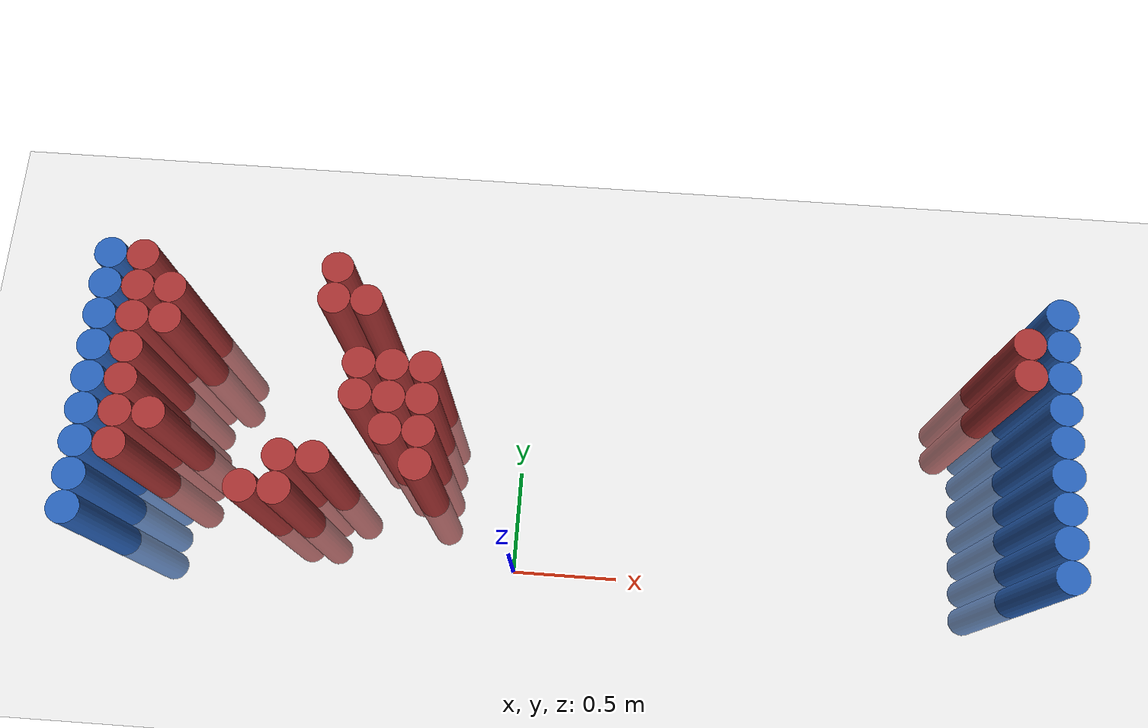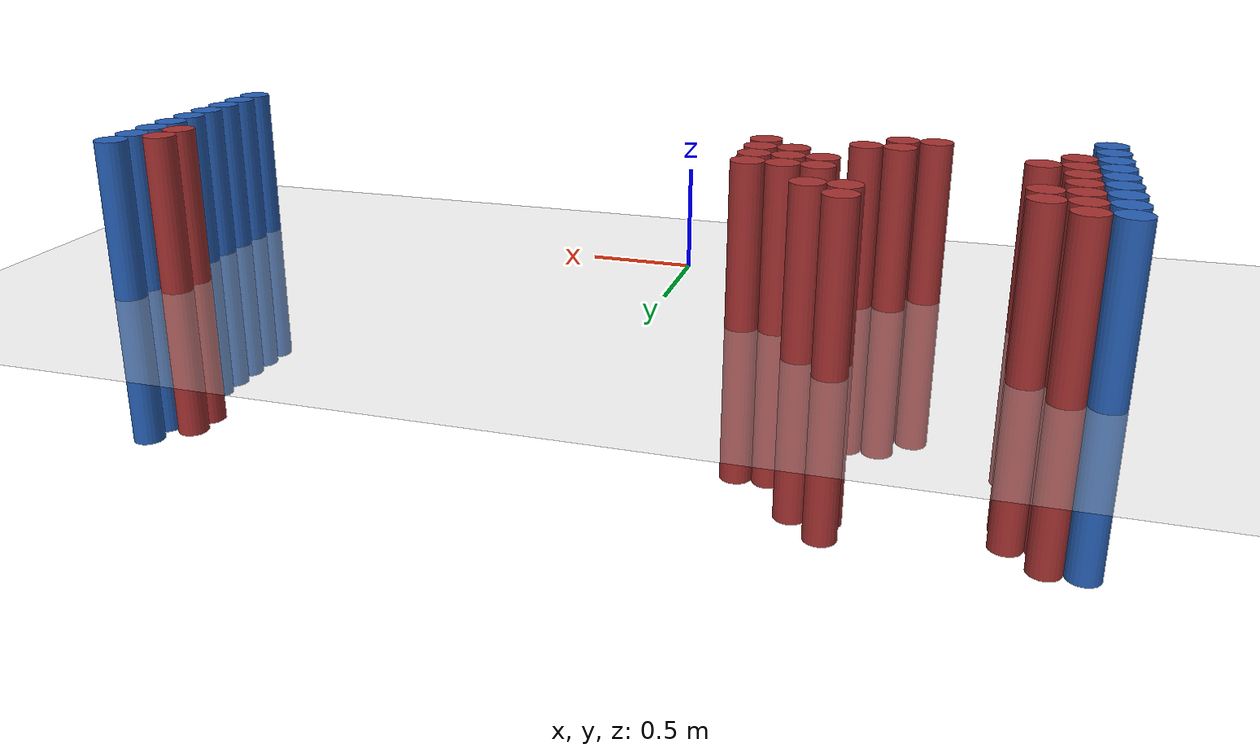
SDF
<sdf version="1.6">
 <world name="default">
  <model name="ground_plane">
   <static>1</static>
   <link name="link">
    <collision name="collision">
     <geometry><plane><normal>0 0 1</normal><size>100 100</size></plane></geometry>
     <surface><friction><ode><mu>100</mu><mu2>50</mu2></ode></friction></surface>
    </collision>
    <visual name="visual">
     <cast_shadows>0</cast_shadows>
     <geometry><plane><normal>0 0 1</normal><size>100 100</size></plane></geometry>
     <material>
      <script><uri>file://media/materials/scripts/gazebo.material</uri><name>Gazebo/Grey</name></script>
     </material>
    </visual>
   </link>
  </model>
  <model name="unit_cylinder_94">
   <static>1</static>
   <pose>2.425000 0.025000 0.000000 0.000000 0.000000 0.000000</pose>
   <link name="link">
    <inertial>
     <mass>1</mass>
     <inertia><ixx>0.145833</ixx><ixy>0</ixy><ixz>0</ixz><iyy>0.145833</iyy><iyz>0</iyz><izz>0.125</izz></inertia>
    </inertial>
    <collision name="collision">
     <geometry><cylinder><radius>0.075000</radius><length>1.5</length></cylinder></geometry>
    </collision>
    <visual name="visual">
     <geometry><cylinder><radius>0.075000</radius><length>1.5</length></cylinder></geometry>
     <material>
      <ambient>0.152000 0.379000 0.720000 1</ambient>
      <diffuse>0.152000 0.379000 0.720000 1</diffuse>
     </material>
     <material>
      <script><name>Gazebo/Grey</name><uri>file://media/materials/scripts/gazebo.material</uri></script>
     </material>
    </visual>
   </link>
  </model>
  <model name="unit_cylinder_95">
   <static>1</static>
   <pose>-1.925000 0.025000 0.000000 0.000000 0.000000 0.000000</pose>
   <link name="link">
    <inertial>
     <mass>1</mass>
     <inertia><ixx>0.145833</ixx><ixy>0</ixy><ixz>0</ixz><iyy>0.145833</iyy><iyz>0</iyz><izz>0.125</izz></inertia>
    </inertial>
    <collision name="collision">
     <geometry><cylinder><radius>0.075000</radius><length>1.5</length></cylinder></geometry>
    </collision>
    <visual name="visual">
     <geometry><cylinder><radius>0.075000</radius><length>1.5</length></cylinder></geometry>
     <material>
      <ambient>0.152000 0.379000 0.720000 1</ambient>
      <diffuse>0.152000 0.379000 0.720000 1</diffuse>
     </material>
     <material>
      <script><name>Gazebo/Grey</name><uri>file://media/materials/scripts/gazebo.material</uri></script>
     </material>
    </visual>
   </link>
  </model>
  <model name="unit_cylinder_96">
   <static>1</static>
   <pose>-1.925000 0.175000 0.000000 0.000000 0.000000 0.000000</pose>
   <link name="link">
    <inertial>
     <mass>1</mass>
     <inertia><ixx>0.145833</ixx><ixy>0</ixy><ixz>0</ixz><iyy>0.145833</iyy><iyz>0</iyz><izz>0.125</izz></inertia>
    </inertial>
    <collision name="collision">
     <geometry><cylinder><radius>0.075000</radius><length>1.5</length></cylinder></geometry>
    </collision>
    <visual name="visual">
     <geometry><cylinder><radius>0.075000</radius><length>1.5</length></cylinder></geometry>
     <material>
      <ambient>0.152000 0.379000 0.720000 1</ambient>
      <diffuse>0.152000 0.379000 0.720000 1</diffuse>
     </material>
     <material>
      <script><name>Gazebo/Grey</name><uri>file://media/materials/scripts/gazebo.material</uri></script>
     </material>
    </visual>
   </link>
  </model>
  <model name="unit_cylinder_97">
   <static>1</static>
   <pose>-1.925000 0.325000 0.000000 0.000000 0.000000 0.000000</pose>
   <link name="link">
    <inertial>
     <mass>1</mass>
     <inertia><ixx>0.145833</ixx><ixy>0</ixy><ixz>0</ixz><iyy>0.145833</iyy><iyz>0</iyz><izz>0.125</izz></inertia>
    </inertial>
    <collision name="collision">
     <geometry><cylinder><radius>0.075000</radius><length>1.5</length></cylinder></geometry>
    </collision>
    <visual name="visual">
     <geometry><cylinder><radius>0.075000</radius><length>1.5</length></cylinder></geometry>
     <material>
      <ambient>0.152000 0.379000 0.720000 1</ambient>
      <diffuse>0.152000 0.379000 0.720000 1</diffuse>
     </material>
     <material>
      <script><name>Gazebo/Grey</name><uri>file://media/materials/scripts/gazebo.material</uri></script>
     </material>
    </visual>
   </link>
  </model>
  <model name="unit_cylinder_98">
   <static>1</static>
   <pose>-1.925000 0.475000 0.000000 0.000000 0.000000 0.000000</pose>
   <link name="link">
    <inertial>
     <mass>1</mass>
     <inertia><ixx>0.145833</ixx><ixy>0</ixy><ixz>0</ixz><iyy>0.145833</iyy><iyz>0</iyz><izz>0.125</izz></inertia>
    </inertial>
    <collision name="collision">
     <geometry><cylinder><radius>0.075000</radius><length>1.5</length></cylinder></geometry>
    </collision>
    <visual name="visual">
     <geometry><cylinder><radius>0.075000</radius><length>1.5</length></cylinder></geometry>
     <material>
      <ambient>0.152000 0.379000 0.720000 1</ambient>
      <diffuse>0.152000 0.379000 0.720000 1</diffuse>
     </material>
     <material>
      <script><name>Gazebo/Grey</name><uri>file://media/materials/scripts/gazebo.material</uri></script>
     </material>
    </visual>
   </link>
  </model>
  <model name="unit_cylinder_99">
   <static>1</static>
   <pose>-1.925000 0.625000 0.000000 0.000000 0.000000 0.000000</pose>
   <link name="link">
    <inertial>
     <mass>1</mass>
     <inertia><ixx>0.145833</ixx><ixy>0</ixy><ixz>0</ixz><iyy>0.145833</iyy><iyz>0</iyz><izz>0.125</izz></inertia>
    </inertial>
    <collision name="collision">
     <geometry><cylinder><radius>0.075000</radius><length>1.5</length></cylinder></geometry>
    </collision>
    <visual name="visual">
     <geometry><cylinder><radius>0.075000</radius><length>1.5</length></cylinder></geometry>
     <material>
      <ambient>0.152000 0.379000 0.720000 1</ambient>
      <diffuse>0.152000 0.379000 0.720000 1</diffuse>
     </material>
     <material>
      <script><name>Gazebo/Grey</name><uri>file://media/materials/scripts/gazebo.material</uri></script>
     </material>
    </visual>
   </link>
  </model>
  <model name="unit_cylinder_100">
   <static>1</static>
   <pose>-1.925000 0.775000 0.000000 0.000000 0.000000 0.000000</pose>
   <link name="link">
    <inertial>
     <mass>1</mass>
     <inertia><ixx>0.145833</ixx><ixy>0</ixy><ixz>0</ixz><iyy>0.145833</iyy><iyz>0</iyz><izz>0.125</izz></inertia>
    </inertial>
    <collision name="collision">
     <geometry><cylinder><radius>0.075000</radius><length>1.5</length></cylinder></geometry>
    </collision>
    <visual name="visual">
     <geometry><cylinder><radius>0.075000</radius><length>1.5</length></cylinder></geometry>
     <material>
      <ambient>0.152000 0.379000 0.720000 1</ambient>
      <diffuse>0.152000 0.379000 0.720000 1</diffuse>
     </material>
     <material>
      <script><name>Gazebo/Grey</name><uri>file://media/materials/scripts/gazebo.material</uri></script>
     </material>
    </visual>
   </link>
  </model>
  <model name="unit_cylinder_101">
   <static>1</static>
   <pose>-1.925000 0.925000 0.000000 0.000000 0.000000 0.000000</pose>
   <link name="link">
    <inertial>
     <mass>1</mass>
     <inertia><ixx>0.145833</ixx><ixy>0</ixy><ixz>0</ixz><iyy>0.145833</iyy><iyz>0</iyz><izz>0.125</izz></inertia>
    </inertial>
    <collision name="collision">
     <geometry><cylinder><radius>0.075000</radius><length>1.5</length></cylinder></geometry>
    </collision>
    <visual name="visual">
     <geometry><cylinder><radius>0.075000</radius><length>1.5</length></cylinder></geometry>
     <material>
      <ambient>0.152000 0.379000 0.720000 1</ambient>
      <diffuse>0.152000 0.379000 0.720000 1</diffuse>
     </material>
     <material>
      <script><name>Gazebo/Grey</name><uri>file://media/materials/scripts/gazebo.material</uri></script>
     </material>
    </visual>
   </link>
  </model>
  <model name="unit_cylinder_102">
   <static>1</static>
   <pose>-1.925000 1.075000 0.000000 0.000000 0.000000 0.000000</pose>
   <link name="link">
    <inertial>
     <mass>1</mass>
     <inertia><ixx>0.145833</ixx><ixy>0</ixy><ixz>0</ixz><iyy>0.145833</iyy><iyz>0</iyz><izz>0.125</izz></inertia>
    </inertial>
    <collision name="collision">
     <geometry><cylinder><radius>0.075000</radius><length>1.5</length></cylinder></geometry>
    </collision>
    <visual name="visual">
     <geometry><cylinder><radius>0.075000</radius><length>1.5</length></cylinder></geometry>
     <material>
      <ambient>0.152000 0.379000 0.720000 1</ambient>
      <diffuse>0.152000 0.379000 0.720000 1</diffuse>
     </material>
     <material>
      <script><name>Gazebo/Grey</name><uri>file://media/materials/scripts/gazebo.material</uri></script>
     </material>
    </visual>
   </link>
  </model>
  <model name="unit_cylinder_103">
   <static>1</static>
   <pose>-1.925000 1.225000 0.000000 0.000000 0.000000 0.000000</pose>
   <link name="link">
    <inertial>
     <mass>1</mass>
     <inertia><ixx>0.145833</ixx><ixy>0</ixy><ixz>0</ixz><iyy>0.145833</iyy><iyz>0</iyz><izz>0.125</izz></inertia>
    </inertial>
    <collision name="collision">
     <geometry><cylinder><radius>0.075000</radius><length>1.5</length></cylinder></geometry>
    </collision>
    <visual name="visual">
     <geometry><cylinder><radius>0.075000</radius><length>1.5</length></cylinder></geometry>
     <material>
      <ambient>0.152000 0.379000 0.720000 1</ambient>
      <diffuse>0.152000 0.379000 0.720000 1</diffuse>
     </material>
     <material>
      <script><name>Gazebo/Grey</name><uri>file://media/materials/scripts/gazebo.material</uri></script>
     </material>
    </visual>
   </link>
  </model>
  <model name="unit_cylinder_126">
   <static>1</static>
   <pose>-1.775000 0.325000 0.000000 0.000000 0.000000 0.000000</pose>
   <link name="link">
    <inertial>
     <mass>1</mass>
     <inertia><ixx>0.145833</ixx><ixy>0</ixy><ixz>0</ixz><iyy>0.145833</iyy><iyz>0</iyz><izz>0.125</izz></inertia>
    </inertial>
    <collision name="collision">
     <geometry><cylinder><radius>0.075000</radius><length>1.5</length></cylinder></geometry>
    </collision>
    <visual name="visual">
     <geometry><cylinder><radius>0.075000</radius><length>1.5</length></cylinder></geometry>
     <material>
      <ambient>0.648000 0.192000 0.192000 1</ambient>
      <diffuse>0.648000 0.192000 0.192000 1</diffuse>
     </material>
     <material>
      <script><name>Gazebo/Grey</name><uri>file://media/materials/scripts/gazebo.material</uri></script>
     </material>
    </visual>
   </link>
  </model>
  <model name="unit_cylinder_127">
   <static>1</static>
   <pose>-1.775000 0.475000 0.000000 0.000000 0.000000 0.000000</pose>
   <link name="link">
    <inertial>
     <mass>1</mass>
     <inertia><ixx>0.145833</ixx><ixy>0</ixy><ixz>0</ixz><iyy>0.145833</iyy><iyz>0</iyz><izz>0.125</izz></inertia>
    </inertial>
    <collision name="collision">
     <geometry><cylinder><radius>0.075000</radius><length>1.5</length></cylinder></geometry>
    </collision>
    <visual name="visual">
     <geometry><cylinder><radius>0.075000</radius><length>1.5</length></cylinder></geometry>
     <material>
      <ambient>0.648000 0.192000 0.192000 1</ambient>
      <diffuse>0.648000 0.192000 0.192000 1</diffuse>
     </material>
     <material>
      <script><name>Gazebo/Grey</name><uri>file://media/materials/scripts/gazebo.material</uri></script>
     </material>
    </visual>
   </link>
  </model>
  <model name="unit_cylinder_128">
   <static>1</static>
   <pose>-1.775000 0.625000 0.000000 0.000000 0.000000 0.000000</pose>
   <link name="link">
    <inertial>
     <mass>1</mass>
     <inertia><ixx>0.145833</ixx><ixy>0</ixy><ixz>0</ixz><iyy>0.145833</iyy><iyz>0</iyz><izz>0.125</izz></inertia>
    </inertial>
    <collision name="collision">
     <geometry><cylinder><radius>0.075000</radius><length>1.5</length></cylinder></geometry>
    </collision>
    <visual name="visual">
     <geometry><cylinder><radius>0.075000</radius><length>1.5</length></cylinder></geometry>
     <material>
      <ambient>0.648000 0.192000 0.192000 1</ambient>
      <diffuse>0.648000 0.192000 0.192000 1</diffuse>
     </material>
     <material>
      <script><name>Gazebo/Grey</name><uri>file://media/materials/scripts/gazebo.material</uri></script>
     </material>
    </visual>
   </link>
  </model>
  <model name="unit_cylinder_129">
   <static>1</static>
   <pose>-1.775000 0.775000 0.000000 0.000000 0.000000 0.000000</pose>
   <link name="link">
    <inertial>
     <mass>1</mass>
     <inertia><ixx>0.145833</ixx><ixy>0</ixy><ixz>0</ixz><iyy>0.145833</iyy><iyz>0</iyz><izz>0.125</izz></inertia>
    </inertial>
    <collision name="collision">
     <geometry><cylinder><radius>0.075000</radius><length>1.5</length></cylinder></geometry>
    </collision>
    <visual name="visual">
     <geometry><cylinder><radius>0.075000</radius><length>1.5</length></cylinder></geometry>
     <material>
      <ambient>0.648000 0.192000 0.192000 1</ambient>
      <diffuse>0.648000 0.192000 0.192000 1</diffuse>
     </material>
     <material>
      <script><name>Gazebo/Grey</name><uri>file://media/materials/scripts/gazebo.material</uri></script>
     </material>
    </visual>
   </link>
  </model>
  <model name="unit_cylinder_130">
   <static>1</static>
   <pose>-1.775000 0.925000 0.000000 0.000000 0.000000 0.000000</pose>
   <link name="link">
    <inertial>
     <mass>1</mass>
     <inertia><ixx>0.145833</ixx><ixy>0</ixy><ixz>0</ixz><iyy>0.145833</iyy><iyz>0</iyz><izz>0.125</izz></inertia>
    </inertial>
    <collision name="collision">
     <geometry><cylinder><radius>0.075000</radius><length>1.5</length></cylinder></geometry>
    </collision>
    <visual name="visual">
     <geometry><cylinder><radius>0.075000</radius><length>1.5</length></cylinder></geometry>
     <material>
      <ambient>0.648000 0.192000 0.192000 1</ambient>
      <diffuse>0.648000 0.192000 0.192000 1</diffuse>
     </material>
     <material>
      <script><name>Gazebo/Grey</name><uri>file://media/materials/scripts/gazebo.material</uri></script>
     </material>
    </visual>
   </link>
  </model>
  <model name="unit_cylinder_131">
   <static>1</static>
   <pose>-1.775000 1.075000 0.000000 0.000000 0.000000 0.000000</pose>
   <link name="link">
    <inertial>
     <mass>1</mass>
     <inertia><ixx>0.145833</ixx><ixy>0</ixy><ixz>0</ixz><iyy>0.145833</iyy><iyz>0</iyz><izz>0.125</izz></inertia>
    </inertial>
    <collision name="collision">
     <geometry><cylinder><radius>0.075000</radius><length>1.5</length></cylinder></geometry>
    </collision>
    <visual name="visual">
     <geometry><cylinder><radius>0.075000</radius><length>1.5</length></cylinder></geometry>
     <material>
      <ambient>0.648000 0.192000 0.192000 1</ambient>
      <diffuse>0.648000 0.192000 0.192000 1</diffuse>
     </material>
     <material>
      <script><name>Gazebo/Grey</name><uri>file://media/materials/scripts/gazebo.material</uri></script>
     </material>
    </visual>
   </link>
  </model>
  <model name="unit_cylinder_132">
   <static>1</static>
   <pose>-1.775000 1.225000 0.000000 0.000000 0.000000 0.000000</pose>
   <link name="link">
    <inertial>
     <mass>1</mass>
     <inertia><ixx>0.145833</ixx><ixy>0</ixy><ixz>0</ixz><iyy>0.145833</iyy><iyz>0</iyz><izz>0.125</izz></inertia>
    </inertial>
    <collision name="collision">
     <geometry><cylinder><radius>0.075000</radius><length>1.5</length></cylinder></geometry>
    </collision>
    <visual name="visual">
     <geometry><cylinder><radius>0.075000</radius><length>1.5</length></cylinder></geometry>
     <material>
      <ambient>0.648000 0.192000 0.192000 1</ambient>
      <diffuse>0.648000 0.192000 0.192000 1</diffuse>
     </material>
     <material>
      <script><name>Gazebo/Grey</name><uri>file://media/materials/scripts/gazebo.material</uri></script>
     </material>
    </visual>
   </link>
  </model>
  <model name="unit_cylinder_147">
   <static>1</static>
   <pose>-1.625000 0.475000 0.000000 0.000000 0.000000 0.000000</pose>
   <link name="link">
    <inertial>
     <mass>1</mass>
     <inertia><ixx>0.145833</ixx><ixy>0</ixy><ixz>0</ixz><iyy>0.145833</iyy><iyz>0</iyz><izz>0.125</izz></inertia>
    </inertial>
    <collision name="collision">
     <geometry><cylinder><radius>0.075000</radius><length>1.5</length></cylinder></geometry>
    </collision>
    <visual name="visual">
     <geometry><cylinder><radius>0.075000</radius><length>1.5</length></cylinder></geometry>
     <material>
      <ambient>0.648000 0.192000 0.192000 1</ambient>
      <diffuse>0.648000 0.192000 0.192000 1</diffuse>
     </material>
     <material>
      <script><name>Gazebo/Grey</name><uri>file://media/materials/scripts/gazebo.material</uri></script>
     </material>
    </visual>
   </link>
  </model>
  <model name="unit_cylinder_148">
   <static>1</static>
   <pose>-1.625000 0.925000 0.000000 0.000000 0.000000 0.000000</pose>
   <link name="link">
    <inertial>
     <mass>1</mass>
     <inertia><ixx>0.145833</ixx><ixy>0</ixy><ixz>0</ixz><iyy>0.145833</iyy><iyz>0</iyz><izz>0.125</izz></inertia>
    </inertial>
    <collision name="collision">
     <geometry><cylinder><radius>0.075000</radius><length>1.5</length></cylinder></geometry>
    </collision>
    <visual name="visual">
     <geometry><cylinder><radius>0.075000</radius><length>1.5</length></cylinder></geometry>
     <material>
      <ambient>0.648000 0.192000 0.192000 1</ambient>
      <diffuse>0.648000 0.192000 0.192000 1</diffuse>
     </material>
     <material>
      <script><name>Gazebo/Grey</name><uri>file://media/materials/scripts/gazebo.material</uri></script>
     </material>
    </visual>
   </link>
  </model>
  <model name="unit_cylinder_149">
   <static>1</static>
   <pose>-1.625000 1.075000 0.000000 0.000000 0.000000 0.000000</pose>
   <link name="link">
    <inertial>
     <mass>1</mass>
     <inertia><ixx>0.145833</ixx><ixy>0</ixy><ixz>0</ixz><iyy>0.145833</iyy><iyz>0</iyz><izz>0.125</izz></inertia>
    </inertial>
    <collision name="collision">
     <geometry><cylinder><radius>0.075000</radius><length>1.5</length></cylinder></geometry>
    </collision>
    <visual name="visual">
     <geometry><cylinder><radius>0.075000</radius><length>1.5</length></cylinder></geometry>
     <material>
      <ambient>0.648000 0.192000 0.192000 1</ambient>
      <diffuse>0.648000 0.192000 0.192000 1</diffuse>
     </material>
     <material>
      <script><name>Gazebo/Grey</name><uri>file://media/materials/scripts/gazebo.material</uri></script>
     </material>
    </visual>
   </link>
  </model>
  <model name="unit_cylinder_164">
   <static>1</static>
   <pose>-1.175000 0.175000 0.000000 0.000000 0.000000 0.000000</pose>
   <link name="link">
    <inertial>
     <mass>1</mass>
     <inertia><ixx>0.145833</ixx><ixy>0</ixy><ixz>0</ixz><iyy>0.145833</iyy><iyz>0</iyz><izz>0.125</izz></inertia>
    </inertial>
    <collision name="collision">
     <geometry><cylinder><radius>0.075000</radius><length>1.5</length></cylinder></geometry>
    </collision>
    <visual name="visual">
     <geometry><cylinder><radius>0.075000</radius><length>1.5</length></cylinder></geometry>
     <material>
      <ambient>0.648000 0.192000 0.192000 1</ambient>
      <diffuse>0.648000 0.192000 0.192000 1</diffuse>
     </material>
     <material>
      <script><name>Gazebo/Grey</name><uri>file://media/materials/scripts/gazebo.material</uri></script>
     </material>
    </visual>
   </link>
  </model>
  <model name="unit_cylinder_167">
   <static>1</static>
   <pose>-1.025000 0.175000 0.000000 0.000000 0.000000 0.000000</pose>
   <link name="link">
    <inertial>
     <mass>1</mass>
     <inertia><ixx>0.145833</ixx><ixy>0</ixy><ixz>0</ixz><iyy>0.145833</iyy><iyz>0</iyz><izz>0.125</izz></inertia>
    </inertial>
    <collision name="collision">
     <geometry><cylinder><radius>0.075000</radius><length>1.5</length></cylinder></geometry>
    </collision>
    <visual name="visual">
     <geometry><cylinder><radius>0.075000</radius><length>1.5</length></cylinder></geometry>
     <material>
      <ambient>0.648000 0.192000 0.192000 1</ambient>
      <diffuse>0.648000 0.192000 0.192000 1</diffuse>
     </material>
     <material>
      <script><name>Gazebo/Grey</name><uri>file://media/materials/scripts/gazebo.material</uri></script>
     </material>
    </visual>
   </link>
  </model>
  <model name="unit_cylinder_168">
   <static>1</static>
   <pose>-1.025000 0.325000 0.000000 0.000000 0.000000 0.000000</pose>
   <link name="link">
    <inertial>
     <mass>1</mass>
     <inertia><ixx>0.145833</ixx><ixy>0</ixy><ixz>0</ixz><iyy>0.145833</iyy><iyz>0</iyz><izz>0.125</izz></inertia>
    </inertial>
    <collision name="collision">
     <geometry><cylinder><radius>0.075000</radius><length>1.5</length></cylinder></geometry>
    </collision>
    <visual name="visual">
     <geometry><cylinder><radius>0.075000</radius><length>1.5</length></cylinder></geometry>
     <material>
      <ambient>0.648000 0.192000 0.192000 1</ambient>
      <diffuse>0.648000 0.192000 0.192000 1</diffuse>
     </material>
     <material>
      <script><name>Gazebo/Grey</name><uri>file://media/materials/scripts/gazebo.material</uri></script>
     </material>
    </visual>
   </link>
  </model>
  <model name="unit_cylinder_173">
   <static>1</static>
   <pose>-0.875000 0.325000 0.000000 0.000000 0.000000 0.000000</pose>
   <link name="link">
    <inertial>
     <mass>1</mass>
     <inertia><ixx>0.145833</ixx><ixy>0</ixy><ixz>0</ixz><iyy>0.145833</iyy><iyz>0</iyz><izz>0.125</izz></inertia>
    </inertial>
    <collision name="collision">
     <geometry><cylinder><radius>0.075000</radius><length>1.5</length></cylinder></geometry>
    </collision>
    <visual name="visual">
     <geometry><cylinder><radius>0.075000</radius><length>1.5</length></cylinder></geometry>
     <material>
      <ambient>0.648000 0.192000 0.192000 1</ambient>
      <diffuse>0.648000 0.192000 0.192000 1</diffuse>
     </material>
     <material>
      <script><name>Gazebo/Grey</name><uri>file://media/materials/scripts/gazebo.material</uri></script>
     </material>
    </visual>
   </link>
  </model>
  <model name="unit_cylinder_174">
   <static>1</static>
   <pose>-0.875000 1.075000 0.000000 0.000000 0.000000 0.000000</pose>
   <link name="link">
    <inertial>
     <mass>1</mass>
     <inertia><ixx>0.145833</ixx><ixy>0</ixy><ixz>0</ixz><iyy>0.145833</iyy><iyz>0</iyz><izz>0.125</izz></inertia>
    </inertial>
    <collision name="collision">
     <geometry><cylinder><radius>0.075000</radius><length>1.5</length></cylinder></geometry>
    </collision>
    <visual name="visual">
     <geometry><cylinder><radius>0.075000</radius><length>1.5</length></cylinder></geometry>
     <material>
      <ambient>0.648000 0.192000 0.192000 1</ambient>
      <diffuse>0.648000 0.192000 0.192000 1</diffuse>
     </material>
     <material>
      <script><name>Gazebo/Grey</name><uri>file://media/materials/scripts/gazebo.material</uri></script>
     </material>
    </visual>
   </link>
  </model>
  <model name="unit_cylinder_175">
   <static>1</static>
   <pose>-0.875000 1.225000 0.000000 0.000000 0.000000 0.000000</pose>
   <link name="link">
    <inertial>
     <mass>1</mass>
     <inertia><ixx>0.145833</ixx><ixy>0</ixy><ixz>0</ixz><iyy>0.145833</iyy><iyz>0</iyz><izz>0.125</izz></inertia>
    </inertial>
    <collision name="collision">
     <geometry><cylinder><radius>0.075000</radius><length>1.5</length></cylinder></geometry>
    </collision>
    <visual name="visual">
     <geometry><cylinder><radius>0.075000</radius><length>1.5</length></cylinder></geometry>
     <material>
      <ambient>0.648000 0.192000 0.192000 1</ambient>
      <diffuse>0.648000 0.192000 0.192000 1</diffuse>
     </material>
     <material>
      <script><name>Gazebo/Grey</name><uri>file://media/materials/scripts/gazebo.material</uri></script>
     </material>
    </visual>
   </link>
  </model>
  <model name="unit_cylinder_180">
   <static>1</static>
   <pose>-0.725000 0.625000 0.000000 0.000000 0.000000 0.000000</pose>
   <link name="link">
    <inertial>
     <mass>1</mass>
     <inertia><ixx>0.145833</ixx><ixy>0</ixy><ixz>0</ixz><iyy>0.145833</iyy><iyz>0</iyz><izz>0.125</izz></inertia>
    </inertial>
    <collision name="collision">
     <geometry><cylinder><radius>0.075000</radius><length>1.5</length></cylinder></geometry>
    </collision>
    <visual name="visual">
     <geometry><cylinder><radius>0.075000</radius><length>1.5</length></cylinder></geometry>
     <material>
      <ambient>0.648000 0.192000 0.192000 1</ambient>
      <diffuse>0.648000 0.192000 0.192000 1</diffuse>
     </material>
     <material>
      <script><name>Gazebo/Grey</name><uri>file://media/materials/scripts/gazebo.material</uri></script>
     </material>
    </visual>
   </link>
  </model>
  <model name="unit_cylinder_181">
   <static>1</static>
   <pose>-0.725000 0.775000 0.000000 0.000000 0.000000 0.000000</pose>
   <link name="link">
    <inertial>
     <mass>1</mass>
     <inertia><ixx>0.145833</ixx><ixy>0</ixy><ixz>0</ixz><iyy>0.145833</iyy><iyz>0</iyz><izz>0.125</izz></inertia>
    </inertial>
    <collision name="collision">
     <geometry><cylinder><radius>0.075000</radius><length>1.5</length></cylinder></geometry>
    </collision>
    <visual name="visual">
     <geometry><cylinder><radius>0.075000</radius><length>1.5</length></cylinder></geometry>
     <material>
      <ambient>0.648000 0.192000 0.192000 1</ambient>
      <diffuse>0.648000 0.192000 0.192000 1</diffuse>
     </material>
     <material>
      <script><name>Gazebo/Grey</name><uri>file://media/materials/scripts/gazebo.material</uri></script>
     </material>
    </visual>
   </link>
  </model>
  <model name="unit_cylinder_182">
   <static>1</static>
   <pose>-0.725000 1.075000 0.000000 0.000000 0.000000 0.000000</pose>
   <link name="link">
    <inertial>
     <mass>1</mass>
     <inertia><ixx>0.145833</ixx><ixy>0</ixy><ixz>0</ixz><iyy>0.145833</iyy><iyz>0</iyz><izz>0.125</izz></inertia>
    </inertial>
    <collision name="collision">
     <geometry><cylinder><radius>0.075000</radius><length>1.5</length></cylinder></geometry>
    </collision>
    <visual name="visual">
     <geometry><cylinder><radius>0.075000</radius><length>1.5</length></cylinder></geometry>
     <material>
      <ambient>0.648000 0.192000 0.192000 1</ambient>
      <diffuse>0.648000 0.192000 0.192000 1</diffuse>
     </material>
     <material>
      <script><name>Gazebo/Grey</name><uri>file://media/materials/scripts/gazebo.material</uri></script>
     </material>
    </visual>
   </link>
  </model>
  <model name="unit_cylinder_187">
   <static>1</static>
   <pose>-0.575000 0.475000 0.000000 0.000000 0.000000 0.000000</pose>
   <link name="link">
    <inertial>
     <mass>1</mass>
     <inertia><ixx>0.145833</ixx><ixy>0</ixy><ixz>0</ixz><iyy>0.145833</iyy><iyz>0</iyz><izz>0.125</izz></inertia>
    </inertial>
    <collision name="collision">
     <geometry><cylinder><radius>0.075000</radius><length>1.5</length></cylinder></geometry>
    </collision>
    <visual name="visual">
     <geometry><cylinder><radius>0.075000</radius><length>1.5</length></cylinder></geometry>
     <material>
      <ambient>0.648000 0.192000 0.192000 1</ambient>
      <diffuse>0.648000 0.192000 0.192000 1</diffuse>
     </material>
     <material>
      <script><name>Gazebo/Grey</name><uri>file://media/materials/scripts/gazebo.material</uri></script>
     </material>
    </visual>
   </link>
  </model>
  <model name="unit_cylinder_188">
   <static>1</static>
   <pose>-0.575000 0.625000 0.000000 0.000000 0.000000 0.000000</pose>
   <link name="link">
    <inertial>
     <mass>1</mass>
     <inertia><ixx>0.145833</ixx><ixy>0</ixy><ixz>0</ixz><iyy>0.145833</iyy><iyz>0</iyz><izz>0.125</izz></inertia>
    </inertial>
    <collision name="collision">
     <geometry><cylinder><radius>0.075000</radius><length>1.5</length></cylinder></geometry>
    </collision>
    <visual name="visual">
     <geometry><cylinder><radius>0.075000</radius><length>1.5</length></cylinder></geometry>
     <material>
      <ambient>0.648000 0.192000 0.192000 1</ambient>
      <diffuse>0.648000 0.192000 0.192000 1</diffuse>
     </material>
     <material>
      <script><name>Gazebo/Grey</name><uri>file://media/materials/scripts/gazebo.material</uri></script>
     </material>
    </visual>
   </link>
  </model>
  <model name="unit_cylinder_189">
   <static>1</static>
   <pose>-0.575000 0.775000 0.000000 0.000000 0.000000 0.000000</pose>
   <link name="link">
    <inertial>
     <mass>1</mass>
     <inertia><ixx>0.145833</ixx><ixy>0</ixy><ixz>0</ixz><iyy>0.145833</iyy><iyz>0</iyz><izz>0.125</izz></inertia>
    </inertial>
    <collision name="collision">
     <geometry><cylinder><radius>0.075000</radius><length>1.5</length></cylinder></geometry>
    </collision>
    <visual name="visual">
     <geometry><cylinder><radius>0.075000</radius><length>1.5</length></cylinder></geometry>
     <material>
      <ambient>0.648000 0.192000 0.192000 1</ambient>
      <diffuse>0.648000 0.192000 0.192000 1</diffuse>
     </material>
     <material>
      <script><name>Gazebo/Grey</name><uri>file://media/materials/scripts/gazebo.material</uri></script>
     </material>
    </visual>
   </link>
  </model>
  <model name="unit_cylinder_195">
   <static>1</static>
   <pose>-0.425000 0.325000 0.000000 0.000000 0.000000 0.000000</pose>
   <link name="link">
    <inertial>
     <mass>1</mass>
     <inertia><ixx>0.145833</ixx><ixy>0</ixy><ixz>0</ixz><iyy>0.145833</iyy><iyz>0</iyz><izz>0.125</izz></inertia>
    </inertial>
    <collision name="collision">
     <geometry><cylinder><radius>0.075000</radius><length>1.5</length></cylinder></geometry>
    </collision>
    <visual name="visual">
     <geometry><cylinder><radius>0.075000</radius><length>1.5</length></cylinder></geometry>
     <material>
      <ambient>0.648000 0.192000 0.192000 1</ambient>
      <diffuse>0.648000 0.192000 0.192000 1</diffuse>
     </material>
     <material>
      <script><name>Gazebo/Grey</name><uri>file://media/materials/scripts/gazebo.material</uri></script>
     </material>
    </visual>
   </link>
  </model>
  <model name="unit_cylinder_196">
   <static>1</static>
   <pose>-0.425000 0.475000 0.000000 0.000000 0.000000 0.000000</pose>
   <link name="link">
    <inertial>
     <mass>1</mass>
     <inertia><ixx>0.145833</ixx><ixy>0</ixy><ixz>0</ixz><iyy>0.145833</iyy><iyz>0</iyz><izz>0.125</izz></inertia>
    </inertial>
    <collision name="collision">
     <geometry><cylinder><radius>0.075000</radius><length>1.5</length></cylinder></geometry>
    </collision>
    <visual name="visual">
     <geometry><cylinder><radius>0.075000</radius><length>1.5</length></cylinder></geometry>
     <material>
      <ambient>0.648000 0.192000 0.192000 1</ambient>
      <diffuse>0.648000 0.192000 0.192000 1</diffuse>
     </material>
     <material>
      <script><name>Gazebo/Grey</name><uri>file://media/materials/scripts/gazebo.material</uri></script>
     </material>
    </visual>
   </link>
  </model>
  <model name="unit_cylinder_197">
   <static>1</static>
   <pose>-0.425000 0.625000 0.000000 0.000000 0.000000 0.000000</pose>
   <link name="link">
    <inertial>
     <mass>1</mass>
     <inertia><ixx>0.145833</ixx><ixy>0</ixy><ixz>0</ixz><iyy>0.145833</iyy><iyz>0</iyz><izz>0.125</izz></inertia>
    </inertial>
    <collision name="collision">
     <geometry><cylinder><radius>0.075000</radius><length>1.5</length></cylinder></geometry>
    </collision>
    <visual name="visual">
     <geometry><cylinder><radius>0.075000</radius><length>1.5</length></cylinder></geometry>
     <material>
      <ambient>0.648000 0.192000 0.192000 1</ambient>
      <diffuse>0.648000 0.192000 0.192000 1</diffuse>
     </material>
     <material>
      <script><name>Gazebo/Grey</name><uri>file://media/materials/scripts/gazebo.material</uri></script>
     </material>
    </visual>
   </link>
  </model>
  <model name="unit_cylinder_198">
   <static>1</static>
   <pose>-0.425000 0.775000 0.000000 0.000000 0.000000 0.000000</pose>
   <link name="link">
    <inertial>
     <mass>1</mass>
     <inertia><ixx>0.145833</ixx><ixy>0</ixy><ixz>0</ixz><iyy>0.145833</iyy><iyz>0</iyz><izz>0.125</izz></inertia>
    </inertial>
    <collision name="collision">
     <geometry><cylinder><radius>0.075000</radius><length>1.5</length></cylinder></geometry>
    </collision>
    <visual name="visual">
     <geometry><cylinder><radius>0.075000</radius><length>1.5</length></cylinder></geometry>
     <material>
      <ambient>0.648000 0.192000 0.192000 1</ambient>
      <diffuse>0.648000 0.192000 0.192000 1</diffuse>
     </material>
     <material>
      <script><name>Gazebo/Grey</name><uri>file://media/materials/scripts/gazebo.material</uri></script>
     </material>
    </visual>
   </link>
  </model>
  <model name="unit_cylinder_238">
   <static>1</static>
   <pose>2.275000 0.925000 0.000000 0.000000 0.000000 0.000000</pose>
   <link name="link">
    <inertial>
     <mass>1</mass>
     <inertia><ixx>0.145833</ixx><ixy>0</ixy><ixz>0</ixz><iyy>0.145833</iyy><iyz>0</iyz><izz>0.125</izz></inertia>
    </inertial>
    <collision name="collision">
     <geometry><cylinder><radius>0.075000</radius><length>1.5</length></cylinder></geometry>
    </collision>
    <visual name="visual">
     <geometry><cylinder><radius>0.075000</radius><length>1.5</length></cylinder></geometry>
     <material>
      <ambient>0.648000 0.192000 0.192000 1</ambient>
      <diffuse>0.648000 0.192000 0.192000 1</diffuse>
     </material>
     <material>
      <script><name>Gazebo/Grey</name><uri>file://media/materials/scripts/gazebo.material</uri></script>
     </material>
    </visual>
   </link>
  </model>
  <model name="unit_cylinder_239">
   <static>1</static>
   <pose>2.275000 1.075000 0.000000 0.000000 0.000000 0.000000</pose>
   <link name="link">
    <inertial>
     <mass>1</mass>
     <inertia><ixx>0.145833</ixx><ixy>0</ixy><ixz>0</ixz><iyy>0.145833</iyy><iyz>0</iyz><izz>0.125</izz></inertia>
    </inertial>
    <collision name="collision">
     <geometry><cylinder><radius>0.075000</radius><length>1.5</length></cylinder></geometry>
    </collision>
    <visual name="visual">
     <geometry><cylinder><radius>0.075000</radius><length>1.5</length></cylinder></geometry>
     <material>
      <ambient>0.648000 0.192000 0.192000 1</ambient>
      <diffuse>0.648000 0.192000 0.192000 1</diffuse>
     </material>
     <material>
      <script><name>Gazebo/Grey</name><uri>file://media/materials/scripts/gazebo.material</uri></script>
     </material>
    </visual>
   </link>
  </model>
  <model name="unit_cylinder_249">
   <static>1</static>
   <pose>2.425000 0.175000 0.000000 0.000000 0.000000 0.000000</pose>
   <link name="link">
    <inertial>
     <mass>1</mass>
     <inertia><ixx>0.145833</ixx><ixy>0</ixy><ixz>0</ixz><iyy>0.145833</iyy><iyz>0</iyz><izz>0.125</izz></inertia>
    </inertial>
    <collision name="collision">
     <geometry><cylinder><radius>0.075000</radius><length>1.5</length></cylinder></geometry>
    </collision>
    <visual name="visual">
     <geometry><cylinder><radius>0.075000</radius><length>1.5</length></cylinder></geometry>
     <material>
      <ambient>0.152000 0.379000 0.720000 1</ambient>
      <diffuse>0.152000 0.379000 0.720000 1</diffuse>
     </material>
     <material>
      <script><name>Gazebo/Grey</name><uri>file://media/materials/scripts/gazebo.material</uri></script>
     </material>
    </visual>
   </link>
  </model>
  <model name="unit_cylinder_250">
   <static>1</static>
   <pose>2.425000 0.325000 0.000000 0.000000 0.000000 0.000000</pose>
   <link name="link">
    <inertial>
     <mass>1</mass>
     <inertia><ixx>0.145833</ixx><ixy>0</ixy><ixz>0</ixz><iyy>0.145833</iyy><iyz>0</iyz><izz>0.125</izz></inertia>
    </inertial>
    <collision name="collision">
     <geometry><cylinder><radius>0.075000</radius><length>1.5</length></cylinder></geometry>
    </collision>
    <visual name="visual">
     <geometry><cylinder><radius>0.075000</radius><length>1.5</length></cylinder></geometry>
     <material>
      <ambient>0.152000 0.379000 0.720000 1</ambient>
      <diffuse>0.152000 0.379000 0.720000 1</diffuse>
     </material>
     <material>
      <script><name>Gazebo/Grey</name><uri>file://media/materials/scripts/gazebo.material</uri></script>
     </material>
    </visual>
   </link>
  </model>
  <model name="unit_cylinder_251">
   <static>1</static>
   <pose>2.425000 0.475000 0.000000 0.000000 0.000000 0.000000</pose>
   <link name="link">
    <inertial>
     <mass>1</mass>
     <inertia><ixx>0.145833</ixx><ixy>0</ixy><ixz>0</ixz><iyy>0.145833</iyy><iyz>0</iyz><izz>0.125</izz></inertia>
    </inertial>
    <collision name="collision">
     <geometry><cylinder><radius>0.075000</radius><length>1.5</length></cylinder></geometry>
    </collision>
    <visual name="visual">
     <geometry><cylinder><radius>0.075000</radius><length>1.5</length></cylinder></geometry>
     <material>
      <ambient>0.152000 0.379000 0.720000 1</ambient>
      <diffuse>0.152000 0.379000 0.720000 1</diffuse>
     </material>
     <material>
      <script><name>Gazebo/Grey</name><uri>file://media/materials/scripts/gazebo.material</uri></script>
     </material>
    </visual>
   </link>
  </model>
  <model name="unit_cylinder_252">
   <static>1</static>
   <pose>2.425000 0.625000 0.000000 0.000000 0.000000 0.000000</pose>
   <link name="link">
    <inertial>
     <mass>1</mass>
     <inertia><ixx>0.145833</ixx><ixy>0</ixy><ixz>0</ixz><iyy>0.145833</iyy><iyz>0</iyz><izz>0.125</izz></inertia>
    </inertial>
    <collision name="collision">
     <geometry><cylinder><radius>0.075000</radius><length>1.5</length></cylinder></geometry>
    </collision>
    <visual name="visual">
     <geometry><cylinder><radius>0.075000</radius><length>1.5</length></cylinder></geometry>
     <material>
      <ambient>0.152000 0.379000 0.720000 1</ambient>
      <diffuse>0.152000 0.379000 0.720000 1</diffuse>
     </material>
     <material>
      <script><name>Gazebo/Grey</name><uri>file://media/materials/scripts/gazebo.material</uri></script>
     </material>
    </visual>
   </link>
  </model>
  <model name="unit_cylinder_253">
   <static>1</static>
   <pose>2.425000 0.775000 0.000000 0.000000 0.000000 0.000000</pose>
   <link name="link">
    <inertial>
     <mass>1</mass>
     <inertia><ixx>0.145833</ixx><ixy>0</ixy><ixz>0</ixz><iyy>0.145833</iyy><iyz>0</iyz><izz>0.125</izz></inertia>
    </inertial>
    <collision name="collision">
     <geometry><cylinder><radius>0.075000</radius><length>1.5</length></cylinder></geometry>
    </collision>
    <visual name="visual">
     <geometry><cylinder><radius>0.075000</radius><length>1.5</length></cylinder></geometry>
     <material>
      <ambient>0.152000 0.379000 0.720000 1</ambient>
      <diffuse>0.152000 0.379000 0.720000 1</diffuse>
     </material>
     <material>
      <script><name>Gazebo/Grey</name><uri>file://media/materials/scripts/gazebo.material</uri></script>
     </material>
    </visual>
   </link>
  </model>
  <model name="unit_cylinder_254">
   <static>1</static>
   <pose>2.425000 0.925000 0.000000 0.000000 0.000000 0.000000</pose>
   <link name="link">
    <inertial>
     <mass>1</mass>
     <inertia><ixx>0.145833</ixx><ixy>0</ixy><ixz>0</ixz><iyy>0.145833</iyy><iyz>0</iyz><izz>0.125</izz></inertia>
    </inertial>
    <collision name="collision">
     <geometry><cylinder><radius>0.075000</radius><length>1.5</length></cylinder></geometry>
    </collision>
    <visual name="visual">
     <geometry><cylinder><radius>0.075000</radius><length>1.5</length></cylinder></geometry>
     <material>
      <ambient>0.152000 0.379000 0.720000 1</ambient>
      <diffuse>0.152000 0.379000 0.720000 1</diffuse>
     </material>
     <material>
      <script><name>Gazebo/Grey</name><uri>file://media/materials/scripts/gazebo.material</uri></script>
     </material>
    </visual>
   </link>
  </model>
  <model name="unit_cylinder_255">
   <static>1</static>
   <pose>2.425000 1.075000 0.000000 0.000000 0.000000 0.000000</pose>
   <link name="link">
    <inertial>
     <mass>1</mass>
     <inertia><ixx>0.145833</ixx><ixy>0</ixy><ixz>0</ixz><iyy>0.145833</iyy><iyz>0</iyz><izz>0.125</izz></inertia>
    </inertial>
    <collision name="collision">
     <geometry><cylinder><radius>0.075000</radius><length>1.5</length></cylinder></geometry>
    </collision>
    <visual name="visual">
     <geometry><cylinder><radius>0.075000</radius><length>1.5</length></cylinder></geometry>
     <material>
      <ambient>0.152000 0.379000 0.720000 1</ambient>
      <diffuse>0.152000 0.379000 0.720000 1</diffuse>
     </material>
     <material>
      <script><name>Gazebo/Grey</name><uri>file://media/materials/scripts/gazebo.material</uri></script>
     </material>
    </visual>
   </link>
  </model>
  <model name="unit_cylinder_256">
   <static>1</static>
   <pose>2.425000 1.225000 0.000000 0.000000 0.000000 0.000000</pose>
   <link name="link">
    <inertial>
     <mass>1</mass>
     <inertia><ixx>0.145833</ixx><ixy>0</ixy><ixz>0</ixz><iyy>0.145833</iyy><iyz>0</iyz><izz>0.125</izz></inertia>
    </inertial>
    <collision name="collision">
     <geometry><cylinder><radius>0.075000</radius><length>1.5</length></cylinder></geometry>
    </collision>
    <visual name="visual">
     <geometry><cylinder><radius>0.075000</radius><length>1.5</length></cylinder></geometry>
     <material>
      <ambient>0.152000 0.379000 0.720000 1</ambient>
      <diffuse>0.152000 0.379000 0.720000 1</diffuse>
     </material>
     <material>
      <script><name>Gazebo/Grey</name><uri>file://media/materials/scripts/gazebo.material</uri></script>
     </material>
    </visual>
   </link>
  </model>
 </world>
</sdf>
